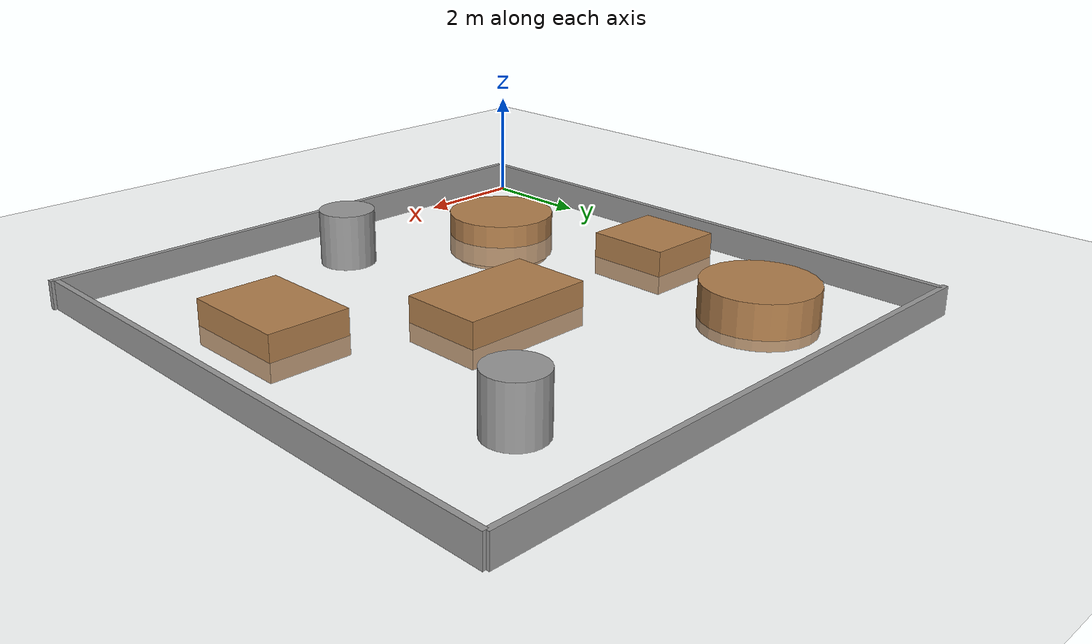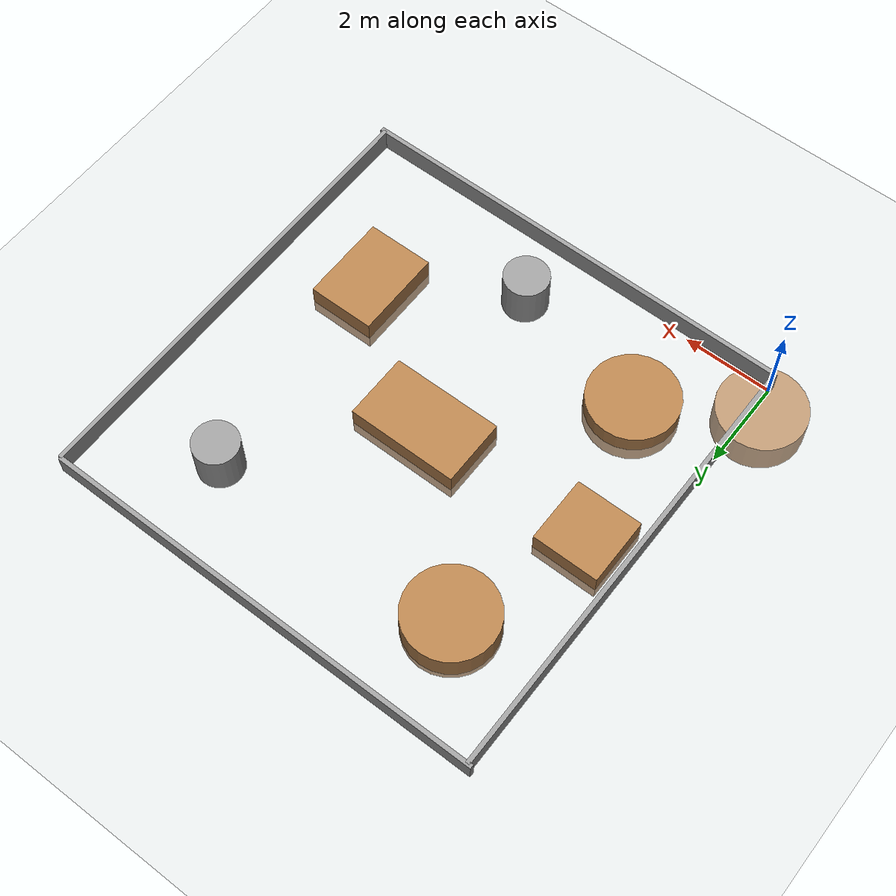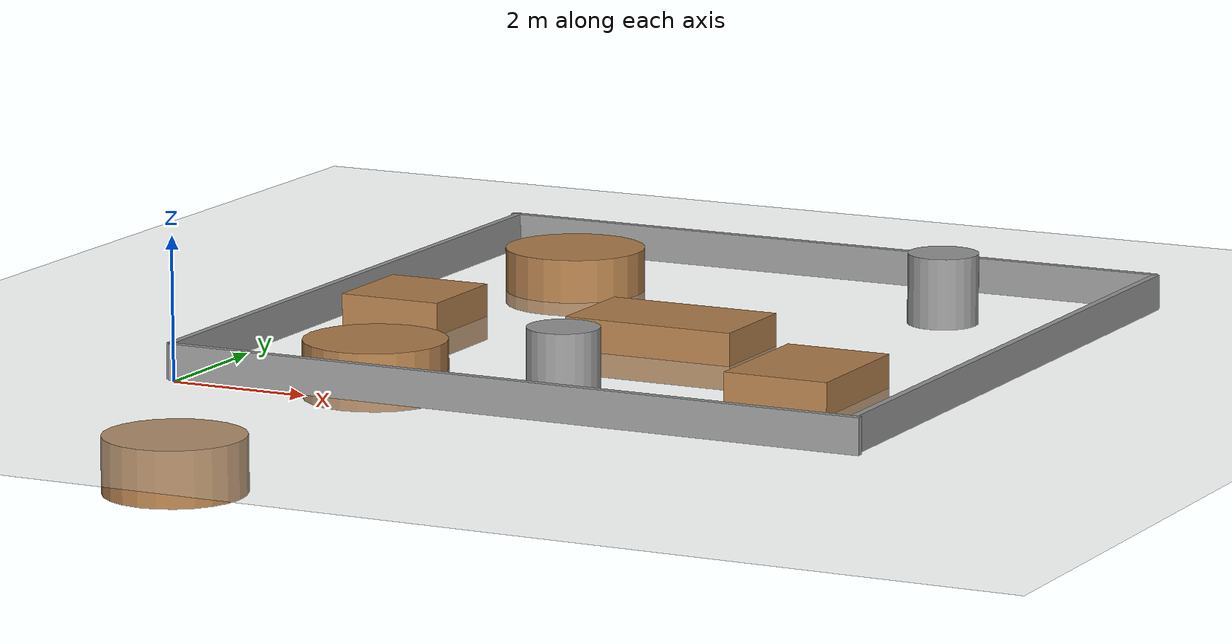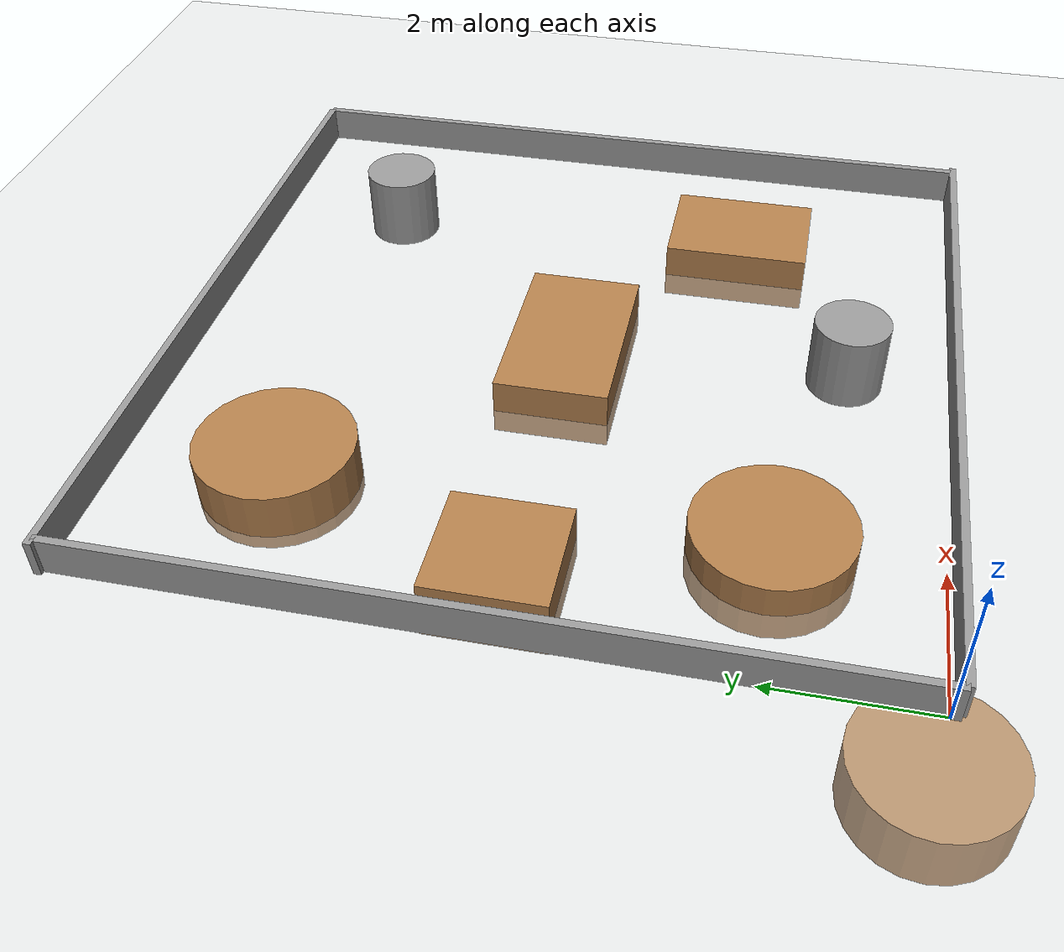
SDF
<sdf version="1.7">
 <world name="default">
  <light name="sun" type="directional">
   <pose>0 0 10 0 -0 0</pose>
   <diffuse>0.8 0.8 0.8 1</diffuse>
   <specular>0.1 0.1 0.1 1</specular>
   <attenuation>
    <range>1000</range>
    <constant>0.9</constant>
    <linear>0.01</linear>
    <quadratic>0.001</quadratic>
   </attenuation>
   <direction>-0.5 0.5 -1</direction>
   <spot><inner_angle>0</inner_angle><outer_angle>0</outer_angle><falloff>0</falloff></spot>
  </light>
  <model name="ground_plane">
   <static>1</static>
   <link name="link">
    <collision name="collision">
     <geometry><plane><normal>0 0 1</normal><size>100 100</size></plane></geometry>
     <surface><friction><ode><mu>100</mu><mu2>50</mu2></ode></friction></surface>
    </collision>
    <visual name="visual">
     <cast_shadows>0</cast_shadows>
     <geometry><plane><normal>0 0 1</normal><size>100 100</size></plane></geometry>
     <material>
      <script><uri>file://media/materials/scripts/gazebo.material</uri><name>Gazebo/Grey</name></script>
     </material>
    </visual>
   </link>
  </model>
  <gravity>0 0 -9.8</gravity>
  <magnetic_field>6e-06 2.3e-05 -4.2e-05</magnetic_field>
  <atmosphere type="adiabatic"/>
  <physics name="default_physics" default="0" type="ode">
   <max_step_size>0.001</max_step_size>
   <real_time_factor>1</real_time_factor>
   <real_time_update_rate>1000</real_time_update_rate>
  </physics>
  <scene><ambient>0.4 0.4 0.4 1</ambient><background>0.7 0.7 0.7 1</background><shadows>1</shadows></scene>
  <spherical_coordinates>
   <surface_model>EARTH_WGS84</surface_model>
   <latitude_deg>0</latitude_deg>
   <longitude_deg>0</longitude_deg>
   <elevation>0</elevation>
   <heading_deg>0</heading_deg>
  </spherical_coordinates>
  <model name="grey_wall">
   <static>1</static>
   <link name="link">
    <pose>0 0 1.4 0 -0 0</pose>
    <collision name="collision"><geometry><box><size>10.2 0.1 0.5</size></box></geometry></collision>
    <visual name="visual">
     <cast_shadows>0</cast_shadows>
     <geometry><box><size>10.2 0.1 0.5</size></box></geometry>
     <material>
      <script>
       <uri>model://grey_wall/materials/scripts</uri>
       <uri>model://grey_wall/materials/textures</uri>
       <name>vrc/grey_wall</name>
      </script>
     </material>
    </visual>
   </link>
   <pose>5.1 -0.1 -1.1 0 -0 0</pose>
  </model>
  <model name="grey_wall_0">
   <static>1</static>
   <link name="link">
    <pose>0 0 1.4 0 -0 0</pose>
    <collision name="collision"><geometry><box><size>10.2 0.1 0.5</size></box></geometry></collision>
    <visual name="visual">
     <cast_shadows>0</cast_shadows>
     <geometry><box><size>10.2 0.1 0.5</size></box></geometry>
     <material>
      <script>
       <uri>model://grey_wall/materials/scripts</uri>
       <uri>model://grey_wall/materials/textures</uri>
       <name>vrc/grey_wall</name>
      </script>
     </material>
    </visual>
   </link>
   <pose>10.1 5 -1.1 0 -0 1.57</pose>
  </model>
  <model name="grey_wall_0_clone">
   <static>1</static>
   <link name="link">
    <pose>0 0 1.4 0 -0 0</pose>
    <collision name="collision"><geometry><box><size>10.2 0.1 0.5</size></box></geometry></collision>
    <visual name="visual">
     <cast_shadows>0</cast_shadows>
     <geometry><box><size>10.2 0.1 0.5</size></box></geometry>
     <material>
      <script>
       <uri>model://grey_wall/materials/scripts</uri>
       <uri>model://grey_wall/materials/textures</uri>
       <name>vrc/grey_wall</name>
      </script>
     </material>
    </visual>
   </link>
   <pose>0 5 -1.1 0 -0 1.57</pose>
  </model>
  <model name="grey_wall_clone">
   <static>1</static>
   <link name="link">
    <pose>0 0 1.4 0 -0 0</pose>
    <collision name="collision"><geometry><box><size>10.2 0.1 0.5</size></box></geometry></collision>
    <visual name="visual">
     <cast_shadows>0</cast_shadows>
     <geometry><box><size>10.2 0.1 0.5</size></box></geometry>
     <material>
      <script>
       <uri>model://grey_wall/materials/scripts</uri>
       <uri>model://grey_wall/materials/textures</uri>
       <name>vrc/grey_wall</name>
      </script>
     </material>
    </visual>
   </link>
   <pose>5 10.1 -1.1 0 -0 0</pose>
  </model>
  <model name="wooden_peg">
   <static>1</static>
   <link name="link">
    <pose>0 0 -1.13 0 -0 0</pose>
    <inertial>
     <mass>1</mass>
     <inertia>
      <ixx>0.00974923</ixx>
      <ixy>0</ixy>
      <ixz>0</ixz>
      <iyy>9.74923e-06</iyy>
      <iyz>0</iyz>
      <izz>8.31797e-07</izz>
     </inertia>
    </inertial>
    <collision name="collision">
     <geometry><cylinder><radius>1</radius><length>0.8</length></cylinder></geometry>
     <surface>
      <contact>
       <poissons_ratio>0.347</poissons_ratio>
       <elastic_modulus>8.8e+09</elastic_modulus>
       <ode><kp>100000</kp><kd>100</kd><max_vel>0</max_vel><min_depth>0.001</min_depth></ode>
      </contact>
      <friction>
       <torsional>
        <coefficient>1</coefficient>
        <use_patch_radius>0</use_patch_radius>
        <surface_radius>0.01</surface_radius>
       </torsional>
      </friction>
     </surface>
    </collision>
    <visual name="visual">
     <geometry><cylinder><radius>1</radius><length>0.8</length></cylinder></geometry>
     <material>
      <script><uri>file://media/materials/scripts/gazebo.material</uri><name>Gazebo/Wood</name></script>
     </material>
    </visual>
   </link>
   <pose>0.001934 -0.007073 0 0 -0 0</pose>
  </model>
  <model name="wooden_peg_clone_0">
   <static>1</static>
   <link name="link">
    <pose>0 0 -1.1 0 -0 0</pose>
    <inertial>
     <mass>1</mass>
     <inertia>
      <ixx>0.00974923</ixx>
      <ixy>0</ixy>
      <ixz>0</ixz>
      <iyy>9.74923e-06</iyy>
      <iyz>0</iyz>
      <izz>8.31797e-07</izz>
     </inertia>
    </inertial>
    <collision name="collision">
     <geometry><cylinder><radius>1</radius><length>0.8</length></cylinder></geometry>
     <surface>
      <contact>
       <poissons_ratio>0.347</poissons_ratio>
       <elastic_modulus>8.8e+09</elastic_modulus>
       <ode><kp>100000</kp><kd>100</kd><max_vel>0</max_vel><min_depth>0.001</min_depth></ode>
      </contact>
      <friction>
       <torsional>
        <coefficient>1</coefficient>
        <use_patch_radius>0</use_patch_radius>
        <surface_radius>0.01</surface_radius>
       </torsional>
      </friction>
     </surface>
    </collision>
    <visual name="visual">
     <geometry><cylinder><radius>1</radius><length>0.8</length></cylinder></geometry>
     <material>
      <script><uri>file://media/materials/scripts/gazebo.material</uri><name>Gazebo/Wood</name></script>
     </material>
    </visual>
   </link>
   <pose>2 2 1.1 0 -0 0</pose>
  </model>
  <model name="wood_cube_10cm">
   <static>1</static>
   <link name="link">
    <pose>0 0 0.05 0 -0 0</pose>
    <inertial>
     <mass>0.5167</mass>
     <inertia>
      <ixx>0.000861167</ixx>
      <ixy>0</ixy>
      <ixz>0</ixz>
      <iyy>0.000861167</iyy>
      <iyz>0</iyz>
      <izz>0.000861167</izz>
     </inertia>
    </inertial>
    <collision name="collision">
     <geometry><box><size>1.5 1.5 0.8</size></box></geometry>
     <surface>
      <contact>
       <poissons_ratio>0.347</poissons_ratio>
       <elastic_modulus>8.8e+09</elastic_modulus>
       <ode><kp>100000</kp><kd>100</kd><max_vel>100</max_vel><min_depth>0.001</min_depth></ode>
      </contact>
      <friction>
       <torsional>
        <coefficient>1</coefficient>
        <use_patch_radius>0</use_patch_radius>
        <surface_radius>0.01</surface_radius>
       </torsional>
      </friction>
     </surface>
    </collision>
    <visual name="visual">
     <geometry><box><size>1.5 1.5 0.8</size></box></geometry>
     <material>
      <script><uri>file://media/materials/scripts/gazebo.material</uri><name>Gazebo/Wood</name></script>
     </material>
    </visual>
   </link>
   <pose>1 5 0 0 -0 0</pose>
  </model>
  <model name="wood_cube_10cm_clone_0">
   <static>1</static>
   <link name="link">
    <pose>0 0 0.05 0 -0 0</pose>
    <inertial>
     <mass>0.5167</mass>
     <inertia>
      <ixx>0.000861167</ixx>
      <ixy>0</ixy>
      <ixz>0</ixz>
      <iyy>0.000861167</iyy>
      <iyz>0</iyz>
      <izz>0.000861167</izz>
     </inertia>
    </inertial>
    <collision name="collision">
     <geometry><box><size>2.5 1.5 0.8</size></box></geometry>
     <surface>
      <contact>
       <poissons_ratio>0.347</poissons_ratio>
       <elastic_modulus>8.8e+09</elastic_modulus>
       <ode><kp>100000</kp><kd>100</kd><max_vel>100</max_vel><min_depth>0.001</min_depth></ode>
      </contact>
      <friction>
       <torsional>
        <coefficient>1</coefficient>
        <use_patch_radius>0</use_patch_radius>
        <surface_radius>0.01</surface_radius>
       </torsional>
      </friction>
     </surface>
    </collision>
    <visual name="visual">
     <geometry><box><size>2.5 1.5 0.8</size></box></geometry>
     <material>
      <script><uri>file://media/materials/scripts/gazebo.material</uri><name>Gazebo/Wood</name></script>
     </material>
    </visual>
   </link>
   <pose>5 5 -0.001013 0 -0 0</pose>
  </model>
  <model name="wood_cube_10cm_clone_1">
   <static>1</static>
   <link name="link">
    <pose>0 0 0.05 0 -0 0</pose>
    <inertial>
     <mass>0.5167</mass>
     <inertia>
      <ixx>0.000861167</ixx>
      <ixy>0</ixy>
      <ixz>0</ixz>
      <iyy>0.000861167</iyy>
      <iyz>0</iyz>
      <izz>0.000861167</izz>
     </inertia>
    </inertial>
    <collision name="collision">
     <geometry><box><size>1.5 2 0.8</size></box></geometry>
     <surface>
      <contact>
       <poissons_ratio>0.347</poissons_ratio>
       <elastic_modulus>8.8e+09</elastic_modulus>
       <ode><kp>100000</kp><kd>100</kd><max_vel>100</max_vel><min_depth>0.001</min_depth></ode>
      </contact>
      <friction>
       <torsional>
        <coefficient>1</coefficient>
        <use_patch_radius>0</use_patch_radius>
        <surface_radius>0.01</surface_radius>
       </torsional>
      </friction>
     </surface>
    </collision>
    <visual name="visual">
     <geometry><box><size>1.5 2 0.8</size></box></geometry>
     <material>
      <script><uri>file://media/materials/scripts/gazebo.material</uri><name>Gazebo/Wood</name></script>
     </material>
    </visual>
   </link>
   <pose>8 3 -0.001013 0 -0 0</pose>
  </model>
  <model name="wooden_peg_clone_0_clone">
   <static>1</static>
   <link name="link">
    <pose>0 0 -1.1 0 -0 0</pose>
    <inertial>
     <mass>1</mass>
     <inertia>
      <ixx>0.00974923</ixx>
      <ixy>0</ixy>
      <ixz>0</ixz>
      <iyy>9.74923e-06</iyy>
      <iyz>0</iyz>
      <izz>8.31797e-07</izz>
     </inertia>
    </inertial>
    <collision name="collision">
     <geometry><cylinder><radius>1</radius><length>0.8</length></cylinder></geometry>
     <surface>
      <contact>
       <poissons_ratio>0.347</poissons_ratio>
       <elastic_modulus>8.8e+09</elastic_modulus>
       <ode><kp>100000</kp><kd>100</kd><max_vel>0</max_vel><min_depth>0.001</min_depth></ode>
      </contact>
      <friction>
       <torsional>
        <coefficient>1</coefficient>
        <use_patch_radius>0</use_patch_radius>
        <surface_radius>0.01</surface_radius>
       </torsional>
      </friction>
     </surface>
    </collision>
    <visual name="visual">
     <geometry><cylinder><radius>1</radius><length>0.8</length></cylinder></geometry>
     <material>
      <script><uri>file://media/materials/scripts/gazebo.material</uri><name>Gazebo/Wood</name></script>
     </material>
    </visual>
   </link>
   <pose>2 8 1.3 0 -0 0</pose>
  </model>
  <model name="unit_cylinder">
   <pose>5.21638 1.31282 0.499993 -3e-06 -4e-06 -0</pose>
   <link name="link">
    <inertial>
     <mass>1</mass>
     <inertia><ixx>0.145833</ixx><ixy>0</ixy><ixz>0</ixz><iyy>0.145833</iyy><iyz>0</iyz><izz>0.125</izz></inertia>
    </inertial>
    <collision name="collision">
     <geometry><cylinder><radius>0.5</radius><length>1</length></cylinder></geometry>
    </collision>
    <visual name="visual">
     <geometry><cylinder><radius>0.5</radius><length>1</length></cylinder></geometry>
     <material>
      <script><name>Gazebo/Grey</name><uri>file://media/materials/scripts/gazebo.material</uri></script>
     </material>
    </visual>
   </link>
  </model>
  <model name="unit_cylinder_0">
   <pose>7.69969 8.12652 0.499997 3e-06 4e-06 -0</pose>
   <link name="link">
    <inertial>
     <mass>1</mass>
     <inertia><ixx>0.145833</ixx><ixy>0</ixy><ixz>0</ixz><iyy>0.145833</iyy><iyz>0</iyz><izz>0.125</izz></inertia>
    </inertial>
    <collision name="collision">
     <geometry><cylinder><radius>0.5</radius><length>1</length></cylinder></geometry>
    </collision>
    <visual name="visual">
     <geometry><cylinder><radius>0.5</radius><length>1</length></cylinder></geometry>
     <material>
      <script><name>Gazebo/Grey</name><uri>file://media/materials/scripts/gazebo.material</uri></script>
     </material>
    </visual>
   </link>
  </model>
 </world>
</sdf>
